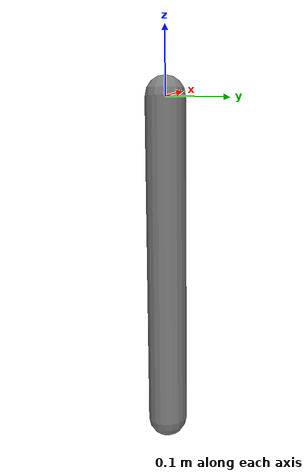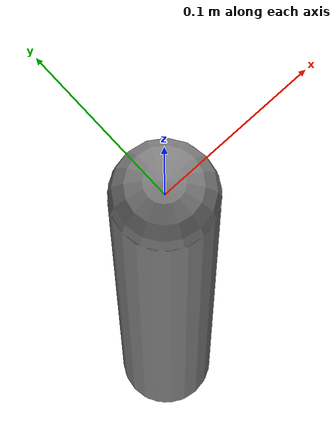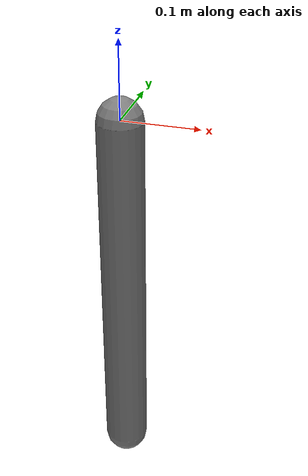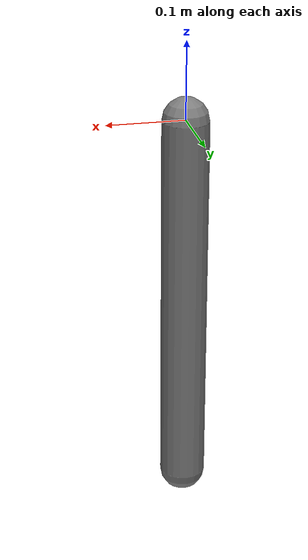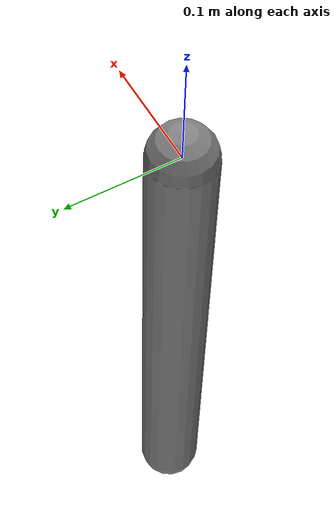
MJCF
<mujoco model="policy gradient">
  <option timestep="0.01" integrator="implicitfast"/>
  <worldbody>
    <body>
      <joint name="hinge" axis="0 1 0" damping=".02" armature=".01"/>
      <geom type="capsule" fromto="0 0 0 0 0 -.5" size=".03" mass="1"/>
    </body>
  </worldbody>
  <actuator><motor joint="hinge"/></actuator>
</mujoco>
